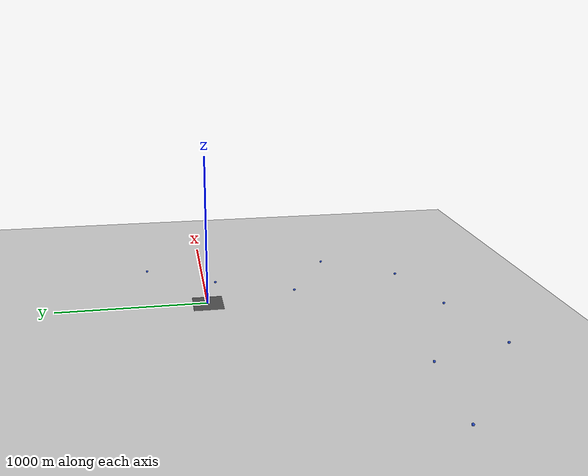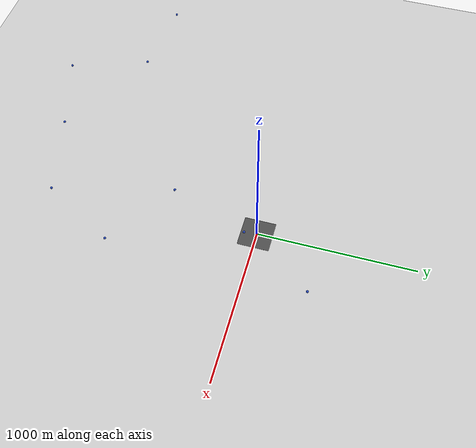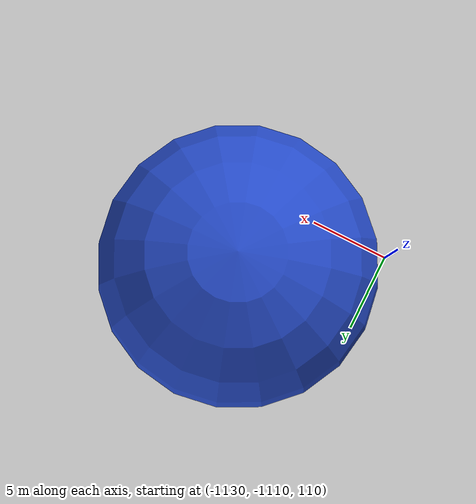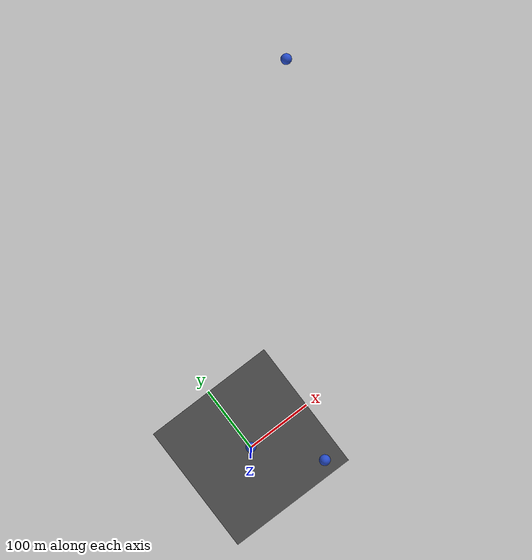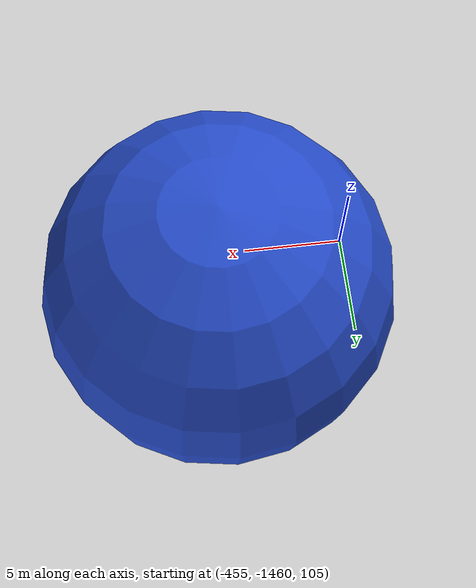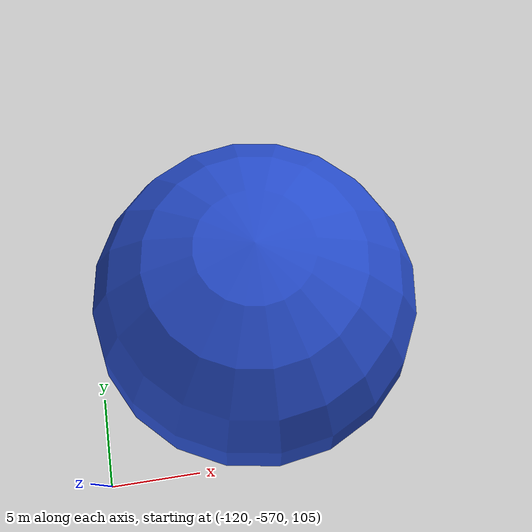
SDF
<sdf version='1.7'>
<world name='default'>
<light name='sun' type='directional'>
	<cast_shadows>1</cast_shadows>
	<pose>0 0 10 0 -0 0</pose>
	<diffuse>0.8 0.8 0.8 1</diffuse>
	<specular>0.2 0.2 0.2 1</specular>
	<attenuation>
		<range>1000</range>
		<constant>0.9</constant>
		<linear>0.01</linear>
		<quadratic>0.001</quadratic>
	</attenuation>
	<direction>-0.5 0.1 -0.9</direction>
	<spot>
		<inner_angle>0</inner_angle>
		<outer_angle>0</outer_angle>
		<falloff>0</falloff>
	</spot>
</light>
<model name='ground_plane'>
	<static>1</static>
	<link name='link'>
		<collision name='collision'>
			<geometry>
				<plane>
					<normal>0 0 1</normal>
					<size>100 100</size>
				</plane>
			</geometry>
			<surface>
				<contact>
					<collide_bitmask>65535</collide_bitmask>
					<ode/>
				</contact>
				<friction>
					<ode>
						<mu>100</mu>
						<mu2>50</mu2>
					</ode>
					<torsional>
						<ode/>
					</torsional>
				</friction>
				<bounce/>
			</surface>
			<max_contacts>10</max_contacts>
		</collision>
		<visual name='visual'>
			<cast_shadows>0</cast_shadows>
			<geometry>
				<plane>
					<normal>0 0 1</normal>
					<size>100 100</size>
				</plane>
			</geometry>
			<material>
				<script>
					<uri>file://media/materials/scripts/gazebo.material</uri>
					<name>Gazebo/Grey</name>
				</script>
			</material>
		</visual>
		<self_collide>0</self_collide>
		<enable_wind>0</enable_wind>
		<kinematic>0</kinematic>
	</link>
</model>
<model name='asphalt_plane'>
	<static>1</static>
	<link name='link'>
		<collision name='collision'>
			<geometry>
				<box>
					<size>200 200 0.1</size>
				</box>
			</geometry>
			<max_contacts>10</max_contacts>
			<surface>
				<contact>
					<ode/>
				</contact>
				<bounce/>
				<friction>
					<torsional>
						<ode/>
					</torsional>
					<ode/>
				</friction>
			</surface>
		</collision>
		<visual name='visual'>
			<cast_shadows>0</cast_shadows>
			<geometry>
				<box>
					<size>200 200 0.1</size>
				</box>
			</geometry>
			<material>
				<script>
					<uri>model://asphalt_plane/materials/scripts</uri>
					<uri>model://asphalt_plane/materials/textures</uri>
					<name>vrc/asphalt</name>
				</script>
			</material>
		</visual>
		<self_collide>0</self_collide>
		<enable_wind>0</enable_wind>
		<kinematic>0</kinematic>
	</link>
</model>
<physics name='default_physics' default='0' type='ode'>
	<ode>
		<solver>
			<type>quick</type>
			<iters>10</iters>
			<sor>1.3</sor>
			<use_dynamic_moi_rescaling>0</use_dynamic_moi_rescaling>
		</solver>
		<constraints>
			<cfm>0</cfm>
			<erp>0.2</erp>
			<contact_max_correcting_vel>100</contact_max_correcting_vel>
			<contact_surface_layer>0.001</contact_surface_layer>
		</constraints>
	</ode>
	<max_step_size>0.004</max_step_size>
	<real_time_factor>1</real_time_factor>
	<real_time_update_rate>250</real_time_update_rate>
</physics>
<gravity>0 0 -9.8066</gravity>
<magnetic_field>6e-06 2.3e-05 -4.2e-05</magnetic_field>
<atmosphere type='adiabatic'/>
<scene>
	<ambient>0.4 0.4 0.4 1</ambient>
	<background>0.7 0.7 0.7 1</background>
	<shadows>1</shadows>
</scene>
<wind/>
<spherical_coordinates>
	<surface_model>EARTH_WGS84</surface_model>
	<world_frame_orientation>ENU</world_frame_orientation>
	<latitude_deg>0</latitude_deg>
	<longitude_deg>0</longitude_deg>
	<elevation>0</elevation>
	<heading_deg>0</heading_deg>
</spherical_coordinates>
<model name='user_way_Point_0'>
	<static>1</static>
	<pose>0.0 0.0 0 0 -0 0</pose>
<link name='link'>
<gravity>0</gravity>
	<inertial>
	<mass>1</mass>
	<inertia>
		<ixx>0.0001</ixx>
		<ixy>0</ixy>
		<ixz>0</ixz>
		<iyy>0.0001</iyy>
		<iyz>0</iyz>
		<izz>0.0001</izz>
	</inertia>
<pose> 0 0 0 0 -0 0</pose>
</inertial>
<collision name='collision'>
	<geometry>
		<sphere>
			<radius>7.62</radius>
		</sphere>
	</geometry>
	<surface>
		<contact>
			<collide_without_contact>1</collide_without_contact>
		</contact>
	</surface>
</collision>
<visual name='visual'>
	<geometry>
		<sphere>
			<radius>7.62</radius>
		</sphere>
	</geometry>
	<material>
		<script>
			<name>Gazebo/Blue</name>
			<uri>file://media/materials/scripts/gazebo.material</uri>
		</script>
	</material>
</visual>
<self_collide>0</self_collide>
<enable_wind>0</enable_wind>
<kinematic>0</kinematic>
</link>
</model>
<model name='user_way_Point_1'>
	<static>1</static>
	<pose>363.42061449710684 396.3934278476419 103.30209571074191 0 -0 0</pose>
<link name='link'>
<gravity>0</gravity>
	<inertial>
	<mass>1</mass>
	<inertia>
		<ixx>0.0001</ixx>
		<ixy>0</ixy>
		<ixz>0</ixz>
		<iyy>0.0001</iyy>
		<iyz>0</iyz>
		<izz>0.0001</izz>
	</inertia>
<pose> 0 0 0 0 -0 0</pose>
</inertial>
<collision name='collision'>
	<geometry>
		<sphere>
			<radius>7.62</radius>
		</sphere>
	</geometry>
	<surface>
		<contact>
			<collide_without_contact>1</collide_without_contact>
		</contact>
	</surface>
</collision>
<visual name='visual'>
	<geometry>
		<sphere>
			<radius>7.62</radius>
		</sphere>
	</geometry>
	<material>
		<script>
			<name>Gazebo/Blue</name>
			<uri>file://media/materials/scripts/gazebo.material</uri>
		</script>
	</material>
</visual>
<self_collide>0</self_collide>
<enable_wind>0</enable_wind>
<kinematic>0</kinematic>
</link>
</model>
<model name='user_way_Point_2'>
	<static>1</static>
	<pose>78.68355107071142 -59.81606068246165 117.09526984911025 0 -0 0</pose>
<link name='link'>
<gravity>0</gravity>
	<inertial>
	<mass>1</mass>
	<inertia>
		<ixx>0.0001</ixx>
		<ixy>0</ixy>
		<ixz>0</ixz>
		<iyy>0.0001</iyy>
		<iyz>0</iyz>
		<izz>0.0001</izz>
	</inertia>
<pose> 0 0 0 0 -0 0</pose>
</inertial>
<collision name='collision'>
	<geometry>
		<sphere>
			<radius>7.62</radius>
		</sphere>
	</geometry>
	<surface>
		<contact>
			<collide_without_contact>1</collide_without_contact>
		</contact>
	</surface>
</collision>
<visual name='visual'>
	<geometry>
		<sphere>
			<radius>7.62</radius>
		</sphere>
	</geometry>
	<material>
		<script>
			<name>Gazebo/Blue</name>
			<uri>file://media/materials/scripts/gazebo.material</uri>
		</script>
	</material>
</visual>
<self_collide>0</self_collide>
<enable_wind>0</enable_wind>
<kinematic>0</kinematic>
</link>
</model>
<model name='user_way_Point_3'>
	<static>1</static>
	<pose>-110.79649412448339 -563.1048502339858 113.233492705924 0 -0 0</pose>
<link name='link'>
<gravity>0</gravity>
	<inertial>
	<mass>1</mass>
	<inertia>
		<ixx>0.0001</ixx>
		<ixy>0</ixy>
		<ixz>0</ixz>
		<iyy>0.0001</iyy>
		<iyz>0</iyz>
		<izz>0.0001</izz>
	</inertia>
<pose> 0 0 0 0 -0 0</pose>
</inertial>
<collision name='collision'>
	<geometry>
		<sphere>
			<radius>7.62</radius>
		</sphere>
	</geometry>
	<surface>
		<contact>
			<collide_without_contact>1</collide_without_contact>
		</contact>
	</surface>
</collision>
<visual name='visual'>
	<geometry>
		<sphere>
			<radius>7.62</radius>
		</sphere>
	</geometry>
	<material>
		<script>
			<name>Gazebo/Blue</name>
			<uri>file://media/materials/scripts/gazebo.material</uri>
		</script>
	</material>
</visual>
<self_collide>0</self_collide>
<enable_wind>0</enable_wind>
<kinematic>0</kinematic>
</link>
</model>
<model name='user_way_Point_4'>
	<static>1</static>
	<pose>340.48193484481 -855.5942912401899 114.37761684222683 0 -0 0</pose>
<link name='link'>
<gravity>0</gravity>
	<inertial>
	<mass>1</mass>
	<inertia>
		<ixx>0.0001</ixx>
		<ixy>0</ixy>
		<ixz>0</ixz>
		<iyy>0.0001</iyy>
		<iyz>0</iyz>
		<izz>0.0001</izz>
	</inertia>
<pose> 0 0 0 0 -0 0</pose>
</inertial>
<collision name='collision'>
	<geometry>
		<sphere>
			<radius>7.62</radius>
		</sphere>
	</geometry>
	<surface>
		<contact>
			<collide_without_contact>1</collide_without_contact>
		</contact>
	</surface>
</collision>
<visual name='visual'>
	<geometry>
		<sphere>
			<radius>7.62</radius>
		</sphere>
	</geometry>
	<material>
		<script>
			<name>Gazebo/Blue</name>
			<uri>file://media/materials/scripts/gazebo.material</uri>
		</script>
	</material>
</visual>
<self_collide>0</self_collide>
<enable_wind>0</enable_wind>
<kinematic>0</kinematic>
</link>
</model>
<model name='user_way_Point_5'>
	<static>1</static>
	<pose>73.45960816268175 -1322.3933657708376 101.60864056613175 0 -0 0</pose>
<link name='link'>
<gravity>0</gravity>
	<inertial>
	<mass>1</mass>
	<inertia>
		<ixx>0.0001</ixx>
		<ixy>0</ixy>
		<ixz>0</ixz>
		<iyy>0.0001</iyy>
		<iyz>0</iyz>
		<izz>0.0001</izz>
	</inertia>
<pose> 0 0 0 0 -0 0</pose>
</inertial>
<collision name='collision'>
	<geometry>
		<sphere>
			<radius>7.62</radius>
		</sphere>
	</geometry>
	<surface>
		<contact>
			<collide_without_contact>1</collide_without_contact>
		</contact>
	</surface>
</collision>
<visual name='visual'>
	<geometry>
		<sphere>
			<radius>7.62</radius>
		</sphere>
	</geometry>
	<material>
		<script>
			<name>Gazebo/Blue</name>
			<uri>file://media/materials/scripts/gazebo.material</uri>
		</script>
	</material>
</visual>
<self_collide>0</self_collide>
<enable_wind>0</enable_wind>
<kinematic>0</kinematic>
</link>
</model>
<model name='user_way_Point_6'>
	<static>1</static>
	<pose>-447.92186826839026 -1454.16456648543 114.25543563083642 0 -0 0</pose>
<link name='link'>
<gravity>0</gravity>
	<inertial>
	<mass>1</mass>
	<inertia>
		<ixx>0.0001</ixx>
		<ixy>0</ixy>
		<ixz>0</ixz>
		<iyy>0.0001</iyy>
		<iyz>0</iyz>
		<izz>0.0001</izz>
	</inertia>
<pose> 0 0 0 0 -0 0</pose>
</inertial>
<collision name='collision'>
	<geometry>
		<sphere>
			<radius>7.62</radius>
		</sphere>
	</geometry>
	<surface>
		<contact>
			<collide_without_contact>1</collide_without_contact>
		</contact>
	</surface>
</collision>
<visual name='visual'>
	<geometry>
		<sphere>
			<radius>7.62</radius>
		</sphere>
	</geometry>
	<material>
		<script>
			<name>Gazebo/Blue</name>
			<uri>file://media/materials/scripts/gazebo.material</uri>
		</script>
	</material>
</visual>
<self_collide>0</self_collide>
<enable_wind>0</enable_wind>
<kinematic>0</kinematic>
</link>
</model>
<model name='user_way_Point_7'>
	<static>1</static>
	<pose>-960.3311321568821 -1617.379272646219 102.92214653993506 0 -0 0</pose>
<link name='link'>
<gravity>0</gravity>
	<inertial>
	<mass>1</mass>
	<inertia>
		<ixx>0.0001</ixx>
		<ixy>0</ixy>
		<ixz>0</ixz>
		<iyy>0.0001</iyy>
		<iyz>0</iyz>
		<izz>0.0001</izz>
	</inertia>
<pose> 0 0 0 0 -0 0</pose>
</inertial>
<collision name='collision'>
	<geometry>
		<sphere>
			<radius>7.62</radius>
		</sphere>
	</geometry>
	<surface>
		<contact>
			<collide_without_contact>1</collide_without_contact>
		</contact>
	</surface>
</collision>
<visual name='visual'>
	<geometry>
		<sphere>
			<radius>7.62</radius>
		</sphere>
	</geometry>
	<material>
		<script>
			<name>Gazebo/Blue</name>
			<uri>file://media/materials/scripts/gazebo.material</uri>
		</script>
	</material>
</visual>
<self_collide>0</self_collide>
<enable_wind>0</enable_wind>
<kinematic>0</kinematic>
</link>
</model>
<model name='user_way_Point_8'>
	<static>1</static>
	<pose>-1122.2420632948752 -1104.5565401413544 119.35471108808238 0 -0 0</pose>
<link name='link'>
<gravity>0</gravity>
	<inertial>
	<mass>1</mass>
	<inertia>
		<ixx>0.0001</ixx>
		<ixy>0</ixy>
		<ixz>0</ixz>
		<iyy>0.0001</iyy>
		<iyz>0</iyz>
		<izz>0.0001</izz>
	</inertia>
<pose> 0 0 0 0 -0 0</pose>
</inertial>
<collision name='collision'>
	<geometry>
		<sphere>
			<radius>7.62</radius>
		</sphere>
	</geometry>
	<surface>
		<contact>
			<collide_without_contact>1</collide_without_contact>
		</contact>
	</surface>
</collision>
<visual name='visual'>
	<geometry>
		<sphere>
			<radius>7.62</radius>
		</sphere>
	</geometry>
	<material>
		<script>
			<name>Gazebo/Blue</name>
			<uri>file://media/materials/scripts/gazebo.material</uri>
		</script>
	</material>
</visual>
<self_collide>0</self_collide>
<enable_wind>0</enable_wind>
<kinematic>0</kinematic>
</link>
</model>
<model name='user_way_Point_9'>
	<static>1</static>
	<pose>-1658.4418943095293 -1063.4222023115883 110.36052017426027 0 -0 0</pose>
<link name='link'>
<gravity>0</gravity>
	<inertial>
	<mass>1</mass>
	<inertia>
		<ixx>0.0001</ixx>
		<ixy>0</ixy>
		<ixz>0</ixz>
		<iyy>0.0001</iyy>
		<iyz>0</iyz>
		<izz>0.0001</izz>
	</inertia>
<pose> 0 0 0 0 -0 0</pose>
</inertial>
<collision name='collision'>
	<geometry>
		<sphere>
			<radius>7.62</radius>
		</sphere>
	</geometry>
	<surface>
		<contact>
			<collide_without_contact>1</collide_without_contact>
		</contact>
	</surface>
</collision>
<visual name='visual'>
	<geometry>
		<sphere>
			<radius>7.62</radius>
		</sphere>
	</geometry>
	<material>
		<script>
			<name>Gazebo/Blue</name>
			<uri>file://media/materials/scripts/gazebo.material</uri>
		</script>
	</material>
</visual>
<self_collide>0</self_collide>
<enable_wind>0</enable_wind>
<kinematic>0</kinematic>
</link>
</model>
</world>
</sdf>
